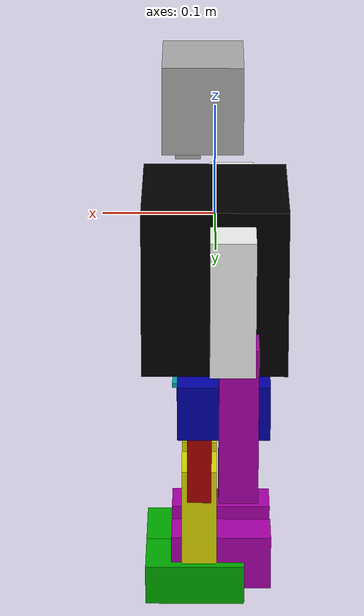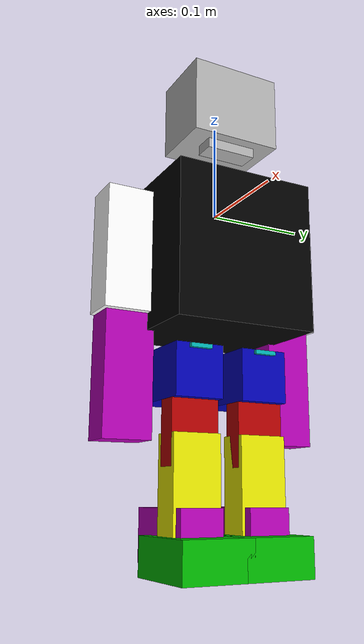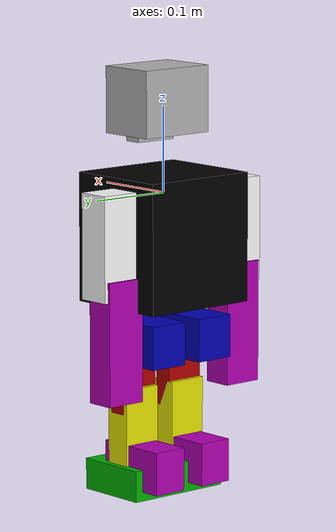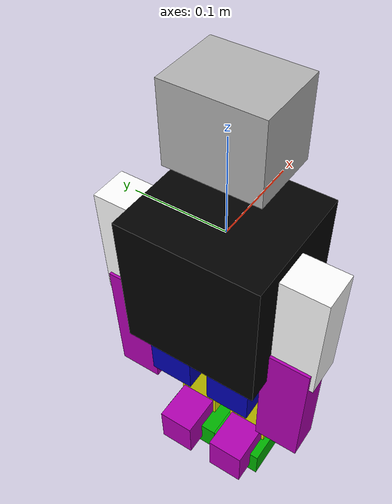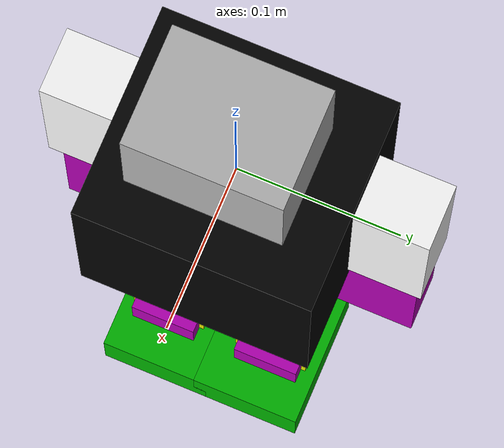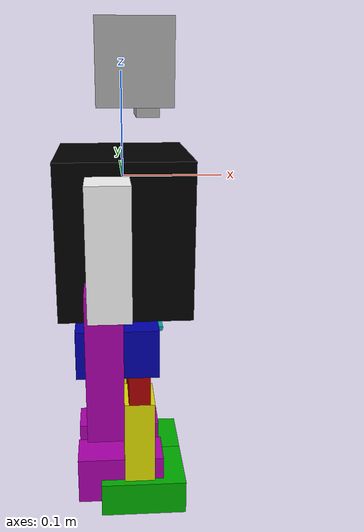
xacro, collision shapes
<?xml version="1.0" ?>

<robot name="soccerbot" xmlns:xacro="http://www.ros.org/wiki/xacro">
    <xacro:arg name="robot_name" default="/" />
    <xacro:arg name="model_type" default="dae" />
    <xacro:arg name="file_path" default="../bez1_description" />
    <xacro:arg name="has_base_footprint" default="false" />
    <xacro:arg name="tf_prefix" default="" />
    <xacro:property name="FILE_PATH" value="$(arg file_path)"/>
    <xacro:property name="MODEL_TYPE" value="$(arg model_type)"/>

    <xacro:include filename="$(find bez1_description)/urdf/parameters.xacro" />

    <xacro:include filename="$(find bez1_description)/urdf/arm.xacro" />
    <xacro:include filename="$(find bez1_description)/urdf/leg.xacro" />
    <xacro:include filename="$(find bez1_description)/urdf/head.xacro" />
    <xacro:include filename="$(find bez1_description)/urdf/front_camera.xacro" />
    <xacro:include filename="$(find bez1_description)/urdf/imu.xacro" />

    <link name="$(arg tf_prefix)/torso">
        <inertial>
            <mass value="1.529"/>
            <origin rpy="0 0 0" xyz="0.0082498 -0.0017440 -0.0522479"/>
            <inertia ixx="4.323e-3" ixy="5.549e-6" ixz="3.960e-5"
                     iyy="5.198e-3" iyz="-1.509e-5"
                     izz="3.567e-3"/>
        </inertial>
        <collision name="collision">
            <origin rpy="0 0 0" xyz="0 0 -0.052"/>
            <geometry>
                <box size="0.130 0.145 0.152"/>
            </geometry>
        </collision>
        <visual name="visual">
            <origin rpy="0 0 0" xyz="0 0 0"/>
            <geometry>
                <mesh filename="${FILE_PATH}/meshes/torso.${MODEL_TYPE}" scale="1 1 1"/>
            </geometry>
            <material name="black" />
        </visual>
    </link>

    <xacro:arm name="left" origin="$(arg tf_prefix)/torso" direction="1" />
    <xacro:arm name="right" origin="$(arg tf_prefix)/torso" direction="-1" />
    <xacro:leg name="left" origin="$(arg tf_prefix)/torso" direction="1" />
    <xacro:leg name="right" origin="$(arg tf_prefix)/torso" direction="-1" />
    <xacro:head origin="$(arg tf_prefix)/torso" />
    <xacro:imu origin="$(arg tf_prefix)/torso" />
    <xacro:front_camera origin="$(arg tf_prefix)/head" />

    <xacro:if value="$(arg has_base_footprint)">
        <link name="$(arg tf_prefix)/base_footprint" />
        <joint name="base_footprint_torso" type="fixed">
            <parent link="$(arg tf_prefix)/base_footprint"/>
            <child link="$(arg tf_prefix)/torso"/>
            <origin rpy="0 0 0" xyz="0 0 0.3536"/>
            <axis xyz="1 0 0"/>
        </joint>
        <gazebo reference="$(arg tf_prefix)/base_footprint">
            <kp>${JOINT_KP}</kp>
            <kd>${JOINT_KD}</kd>
            <mu1>${JOINT_MU1}</mu1>
            <mu2>${JOINT_MU2}</mu2>
        </gazebo>
    </xacro:if>

    <gazebo>
        <plugin name="gazebo_ros_control" filename="libgazebo_ros_control.so">
            <robotNamespace>$(arg robot_name)</robotNamespace>
            <robotSimType>gazebo_ros_control/DefaultRobotHWSim</robotSimType>
        </plugin>

        <plugin name="p3d_base_controller" filename="libgazebo_ros_p3d.so">
            <alwaysOn>true</alwaysOn>
            <updateRate>50.0</updateRate>
            <bodyName>base_footprint</bodyName>
            <topicName>odom_ground_truth</topicName>
            <gaussianNoise>0.01</gaussianNoise>
            <frameName>world</frameName>
            <xyzOffsets>0 0 0</xyzOffsets>
            <rpyOffsets>0 0 0</rpyOffsets>
        </plugin>
    </gazebo>

    <gazebo reference="$(arg tf_prefix)/torso">
        <kp>${JOINT_KP}</kp>
        <kd>${JOINT_KD}</kd>
        <mu1>${JOINT_MU1}</mu1>
        <mu2>${JOINT_MU2}</mu2>
    </gazebo>

</robot>

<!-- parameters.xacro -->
<robot name="bez1" xmlns:xacro="http://www.ros.org/wiki/xacro">

    <xacro:property name="PI" value="3.1415926535897931"/>

    <xacro:property name="JOINT_KP" value="1e15"/>
    <xacro:property name="JOINT_KD" value="1e13"/>
    <xacro:property name="JOINT_MU1" value="0.2"/>
    <xacro:property name="JOINT_MU2" value="0.2"/>
    <xacro:property name="FOREARM_MU1" value="0.2"/>
    <xacro:property name="FOREARM_MU2" value="0.2"/>

    <xacro:property name="JOINT_FRICTION" value="0.1"/>
    <xacro:property name="JOINT_DAMPING" value="0.01"/>

    <xacro:property name="MX28_TORQUE" value="2.5"/>
    <xacro:property name="MX28_VELOCITY" value="1"/>
    <xacro:property name="AX12_TORQUE" value="1.5"/>
    <xacro:property name="AX12_VELOCITY" value="1"/>

    <material name="white">
        <color rgba="1.0 1.0 1.0 1.0"/>
    </material>
    <material name="black">
        <color rgba="0.0 0.0 0.0 1.0"/>
    </material>
    <material name="silver">
        <color rgba="0.7 0.7 0.7 1.0"/>
    </material>
    <material name="yellow">
        <color rgba="0.9 0.9 0.0 1.0"/>
    </material>
    <material name="red">
        <color rgba="0.7 0.0 0.0 1.0"/>
    </material>
    <material name="green">
        <color rgba="0.0 0.7 0.0 1.0"/>
    </material>
    <material name="blue">
        <color rgba="0.0 0.0 0.7 1.0"/>
    </material>
    <material name="purple">
        <color rgba="0.7 0.0 0.7 1.0"/>
    </material>
    <material name="cyan">
        <color rgba="0.0 0.7 0.7 1.0"/>
    </material>
</robot>

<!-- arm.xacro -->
<robot name="bez1" xmlns:xacro="http://www.ros.org/wiki/xacro">
        <xacro:macro name="arm" params="name origin direction">
            <link name="$(arg tf_prefix)/${name}_bicep">
                <inertial>
                    <mass value="0.213e-3"/>
                    <origin rpy="0  0  0" xyz="0.000 ${direction * 0.02579} -0.04955"/>
                    <inertia ixx="2.824e-4" ixy="0.000" ixz="${direction * 0.000}"
                             iyy="2.744e-4" iyz="${direction * 1.165e-5}"
                             izz="2.433e-5" />
                </inertial>
                <collision name="collision">
                    <origin rpy="0  0  0" xyz="0 ${direction * 0.0225} -0.05001"/>
                    <geometry>
                        <box size="0.04 0.04776 0.123"/>
                    </geometry>
                </collision>
                <visual name="visual">
                    <origin rpy="0  0  0" xyz="0  0  0"/>
                    <geometry>
                        <mesh filename="${FILE_PATH}/meshes/${name}_bicep.${MODEL_TYPE}" scale="1 1 1"/>
                    </geometry>
                    <material name="white" />
                </visual>
            </link>
            <link name="$(arg tf_prefix)/${name}_forearm">
                <inertial>
                    <mass value="45.7e-3"/>
                    <origin rpy="0  0  0" xyz="0 ${direction * 0.0245} -0.0546097" />
                    <inertia ixx="0.113e-3" ixy="0.000" ixz="${direction * 0.001e-3}"
                             iyy="0.107e-3" iyz="${direction * 0.000}"
                             izz="0.012e-3" />
                </inertial>
                <collision name="collision">
                    <origin rpy="0  0  0" xyz="-0.0055 ${direction * 0.01750} -0.0600"/>
                    <geometry>
                        <box size="0.035 0.049 0.144"/>
                    </geometry>
                </collision>
                <visual name="visual">
                    <origin rpy="0  0  0" xyz="0  0  0"/>
                    <geometry>
                        <mesh filename="${FILE_PATH}/meshes/${name}_forearm.${MODEL_TYPE}" scale="1 1 1"/>
                    </geometry>
                    <material name="purple" />
                </visual>
            </link>

            <joint name="${name}_arm_motor_0" type="revolute">
                <parent link="${origin}"/>
                <child link="$(arg tf_prefix)/${name}_bicep"/>
                <origin rpy="0 0 0" xyz="-0.0157 ${direction * 0.0725} 0"/>
                <axis xyz="0 -1 0"/>
                <dynamics damping="${JOINT_DAMPING}" friction="${JOINT_FRICTION}" />
                <limit effort="${AX12_TORQUE}" lower="-${PI/2}" upper="${PI*5/4}" velocity="${AX12_VELOCITY}"/>
            </joint>
            <joint name="${name}_arm_motor_1" type="revolute">
                <parent link="$(arg tf_prefix)/${name}_bicep"/>
                <child link="$(arg tf_prefix)/${name}_forearm"/>
                <origin rpy="0 0 0" xyz="0 0 -0.10"/>
                <axis xyz="0 -1 0"/>
                <dynamics damping="${JOINT_DAMPING}" friction="${JOINT_FRICTION}" />
                <limit effort="${AX12_TORQUE}" lower="0" upper="${PI}" velocity="${AX12_VELOCITY}"/>
            </joint>

            <gazebo reference="$(arg tf_prefix)/${name}_forearm">
                <mu1>${FOREARM_MU1}</mu1>
                <mu2>${FOREARM_MU2}</mu2>
            </gazebo>

            <transmission name="${name}_arm_motor_0">
                <type>transmission_interface/SimpleTransmission</type>
                <joint name="${name}_arm_motor_0">
                    <hardwareInterface>hardware_interface/EffortJointInterface</hardwareInterface>
                </joint>
                <actuator name="${name}_arm_motor_0">
                    <hardwareInterface>hardware_interface/EffortJointInterface</hardwareInterface>
                    <mechanicalReduction>1</mechanicalReduction>
                </actuator>
            </transmission>
            <transmission name="${name}_arm_motor_1">
                <type>transmission_interface/SimpleTransmission</type>
                <joint name="${name}_arm_motor_1">
                    <hardwareInterface>hardware_interface/EffortJointInterface</hardwareInterface>
                </joint>
                <actuator name="${name}_arm_motor_1">
                    <hardwareInterface>hardware_interface/EffortJointInterface</hardwareInterface>
                    <mechanicalReduction>1</mechanicalReduction>
                </actuator>
            </transmission>

            <gazebo reference="$(arg tf_prefix)/${name}_bicep">
                <kp>${JOINT_KP}</kp>
                <kd>${JOINT_KD}</kd>
                <mu1>${JOINT_MU1}</mu1>
                <mu2>${JOINT_MU2}</mu2>
            </gazebo>
            <gazebo reference="$(arg tf_prefix)/${name}_forearm">
                <kp>${JOINT_KP}</kp>
                <kd>${JOINT_KD}</kd>
                <mu1>${JOINT_MU1}</mu1>
                <mu2>${JOINT_MU2}</mu2>
            </gazebo>
        </xacro:macro>
    </robot>

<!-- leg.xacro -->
<robot name="bez1" xmlns:xacro="http://www.ros.org/wiki/xacro">
    <xacro:macro name="leg" params="name origin direction">
        <link name="$(arg tf_prefix)/${name}_hip_side">
            <inertial>
                <mass value="9.364e-3"/>
                <origin rpy="0  0  0" xyz="0.0003695 0.0000 0.01689"/>
                <inertia ixx="0.002e-3" ixy="0.000" ixz="0.000"
                         iyy="0.005e-3" iyz="0.000"
                         izz="0.004e-3"/>
            </inertial>
            <collision name="collision">
                <origin rpy="0  0  0" xyz="0 0 0.00899"/>
                <geometry>
                    <box size="0.0485 0.022 0.0039"/>
                </geometry>
            </collision>
            <visual name="visual">
                <origin rpy="0  0  0" xyz="0  0  0"/>
                <geometry>
                    <mesh filename="${FILE_PATH}/meshes/${name}_hip_side.${MODEL_TYPE}" scale="1 1 1"/>
                </geometry>
                <material name="cyan" />
            </visual>
        </link>
        <link name="$(arg tf_prefix)/${name}_hip_front">
            <inertial>
                <mass value="153.186e-3"/>
                <origin rpy="0 0 0" xyz="-0.02093 0 -0.011313"/>
                <inertia ixx="0.041e-3" ixy="0.000" ixz="-0.002e-3"
                         iyy="0.118e-3" iyz="0.000"
                         izz="0.106e-3"/>
            </inertial>
            <collision name="collision">
                <origin rpy="0 0 0" xyz="-0.02187 0 -0.01332"/>
                <geometry>
                    <box size="0.083747 0.04885 0.0506"/>
                </geometry>
            </collision>
            <visual name="visual">
                <origin rpy="0  0  0" xyz="0  0  0"/>
                <geometry>
                    <mesh filename="${FILE_PATH}/meshes/${name}_hip_front.${MODEL_TYPE}" scale="1 1 1"/>
                </geometry>
                <material name="blue" />
            </visual>
        </link>
        <link name="$(arg tf_prefix)/${name}_thigh">
            <inertial>
                <mass value="21.438e-3"/>
                <origin rpy="0 0 0" xyz="0.0019422 ${direction * 0.0001419} -0.0469409"/>
                <inertia ixx="0.025e-3" ixy="${direction * 0.002e-3}" ixz="0.000"
                         iyy="0.016e-3" iyz="0.000"
                         izz="0.010e-3"/>
            </inertial>
            <collision name="collision">
                <origin rpy="0 0 0" xyz="0 0 -0.0445"/>
                <geometry>
                    <box size="0.022 0.048 0.111"/>
                </geometry>
            </collision>
            <visual name="visual">
                <origin rpy="0  0  0" xyz="0  0  0"/>
                <geometry>
                    <mesh filename="${FILE_PATH}/meshes/${name}_thigh.${MODEL_TYPE}" scale="1 1 1"/>
                </geometry>
                <material name="red" />
            </visual>
        </link>
        <link name="$(arg tf_prefix)/${name}_calve">
            <inertial>
                <mass value="86.547e-3"/>
                <origin rpy="0  0  0" xyz="0 ${direction * -0.0003259e-3} -0.0150123e-3"/>
                <inertia ixx="0.054e-3" ixy="0.000" ixz="0.000"
                         iyy="0.046e-3" iyz="-0.001e-3"
                         izz="0.019e-3"/>
            </inertial>
            <collision name="collision">
                <origin rpy="0 0 0" xyz="0 0 -0.03385"/>
                <geometry>
                    <box size="0.031883 0.048 0.105683"/>
                </geometry>
            </collision>
            <visual name="visual">
                <origin rpy="0 0 0" xyz="0 0 -0.0827"/>
                <geometry>
                    <mesh filename="${FILE_PATH}/meshes/${name}_calve.${MODEL_TYPE}" scale="1 1 1"/>
                </geometry>
                <material name="yellow" />
            </visual>
        </link>
        <link name="$(arg tf_prefix)/${name}_ankle">
            <inertial>
                <mass value="153.186e-3"/>
                <origin rpy="0 0 0" xyz="-0.020939e-3 0.000 0.011313e-3"/>
                <inertia ixx="0.041e-3" ixy="0.000" ixz="0.002e-3"
                         iyy="0.118e-3" iyz="0.000"
                         izz="0.106e-3"/>
            </inertial>
            <collision name="collision">
                <origin rpy="0 0 0" xyz="-0.02014 0 0.01031"/>
                <geometry>
                    <box size="0.090769 0.042 0.0506"/>
                </geometry>
            </collision>
            <visual name="visual">
                <origin rpy="0 0 0" xyz="0  0  0"/>
                <geometry>
                    <mesh filename="${FILE_PATH}/meshes/${name}_ankle.${MODEL_TYPE}" scale="1 1 1"/>
                </geometry>
                <material name="purple" />
            </visual>
        </link>
        <link name="$(arg tf_prefix)/${name}_foot">
            <inertial>
                <mass value="23.216e-3"/>
                <origin rpy="0 0 0" xyz="-0.020939 0.0 0.011313"/>
                <inertia ixx="0.006e-3" ixy="0.000" ixz="0.000"
                         iyy="0.018e-3" iyz="0.000"
                         izz="0.022e-3"/>
            </inertial>
            <collision name="collision">
                <origin rpy="0 0 0" xyz="0.00385 ${direction * -0.00401} -0.00737 "/>
                <geometry>
                    <box size="0.09 0.07 0.03674"/>
                </geometry>
                <contact_coefficients mu ="100.0" />
            </collision>
            <visual name="visual">
                <origin rpy="0  0  0" xyz="0  0  0"/>
                <geometry>
                    <mesh filename="${FILE_PATH}/meshes/${name}_foot.${MODEL_TYPE}" scale="1 1 1"/>
                </geometry>
                <material name="green" />
            </visual>
        </link>

        <joint name="${name}_hip_yaw" type="revolute">
            <parent link="$(arg tf_prefix)/torso"/>
            <child link="$(arg tf_prefix)/${name}_hip_side"/>
            <origin rpy="0 0 0" xyz="0.0135 ${direction * 0.035} -0.156"/>
            <axis xyz="0 0 ${direction * -1}"/>
            <dynamics damping="${JOINT_DAMPING}" friction="${JOINT_FRICTION}" />
            <limit effort="${MX28_TORQUE}" lower="-1.309" upper="0.524" velocity="${MX28_VELOCITY}"/>
        </joint>
        <joint name="${name}_hip_roll" type="revolute">
            <parent link="$(arg tf_prefix)/${name}_hip_side"/>
            <child link="$(arg tf_prefix)/${name}_hip_front"/>
            <origin rpy="0 0 0" xyz="0 0 0"/>
            <axis xyz="${direction} 0 0"/>
            <dynamics damping="${JOINT_DAMPING}" friction="${JOINT_FRICTION}" />
            <limit effort="${MX28_TORQUE}" lower="-${PI/4}" upper="${PI/2}" velocity="${MX28_VELOCITY}"/>
        </joint>
        <joint name="${name}_hip_pitch" type="revolute">
            <parent link="$(arg tf_prefix)/${name}_hip_front"/>
            <child link="$(arg tf_prefix)/${name}_thigh"/>
            <origin rpy="0 0 0" xyz="0 0 0"/>
            <axis xyz="0 -1 0"/>
            <dynamics damping="${JOINT_DAMPING}" friction="${JOINT_FRICTION}" />
            <limit effort="${MX28_TORQUE}" lower="-${PI/4}" upper="${PI*3/4}" velocity="${MX28_VELOCITY}"/>
        </joint>
        <joint name="${name}_knee" type="revolute">
            <parent link="$(arg tf_prefix)/${name}_thigh"/>
            <child link="$(arg tf_prefix)/${name}_calve"/>
            <origin rpy="0 0 0" xyz="0 0 -0.0890"/>
            <axis xyz="0 -1 0"/>
            <dynamics damping="${JOINT_DAMPING}" friction="${JOINT_FRICTION}" />
            <limit effort="${MX28_TORQUE}" lower="-2.793" upper="0" velocity="${MX28_VELOCITY}"/>
        </joint>
        <joint name="${name}_ankle_pitch" type="revolute">
            <parent link="$(arg tf_prefix)/${name}_calve"/>
            <child link="$(arg tf_prefix)/${name}_ankle"/>
            <origin rpy="0 0 0" xyz="0 0 -0.0827"/>
            <axis xyz="0 -1 0"/>
            <dynamics damping="${JOINT_DAMPING}" friction="${JOINT_FRICTION}" />
            <limit effort="${MX28_TORQUE}" lower="-${PI/4}" upper="${PI/2}" velocity="${MX28_VELOCITY}"/>
        </joint>
        <joint name="${name}_ankle_roll" type="revolute">
            <parent link="$(arg tf_prefix)/${name}_ankle"/>
            <child link="$(arg tf_prefix)/${name}_foot"/>
            <origin rpy="0 0 0" xyz="0 0 0"/>
            <axis xyz="${direction} 0 0"/>
            <dynamics damping="${JOINT_DAMPING}" friction="${JOINT_FRICTION}" />
            <limit effort="${MX28_TORQUE}" lower="-${PI/4}" upper="${PI/4}" velocity="${MX28_VELOCITY}"/>
        </joint>

        <transmission name="${name}_hip_yaw">
            <type>transmission_interface/SimpleTransmission</type>
            <joint name="${name}_hip_yaw">
                <hardwareInterface>hardware_interface/EffortJointInterface</hardwareInterface>
            </joint>
            <actuator name="${name}_hip_yaw">
                <hardwareInterface>hardware_interface/EffortJointInterface</hardwareInterface>
                <mechanicalReduction>1</mechanicalReduction>
            </actuator>
        </transmission>
        <transmission name="${name}_hip_roll">
            <type>transmission_interface/SimpleTransmission</type>
            <joint name="${name}_hip_roll">
                <hardwareInterface>hardware_interface/EffortJointInterface</hardwareInterface>
            </joint>
            <actuator name="${name}_hip_roll">
                <hardwareInterface>hardware_interface/EffortJointInterface</hardwareInterface>
                <mechanicalReduction>1</mechanicalReduction>
            </actuator>
        </transmission>
        <transmission name="${name}_hip_pitch">
            <type>transmission_interface/SimpleTransmission</type>
            <joint name="${name}_hip_pitch">
                <hardwareInterface>hardware_interface/EffortJointInterface</hardwareInterface>
            </joint>
            <actuator name="${name}_hip_pitch">
                <hardwareInterface>hardware_interface/EffortJointInterface</hardwareInterface>
                <mechanicalReduction>1</mechanicalReduction>
            </actuator>
        </transmission>
        <transmission name="${name}_knee">
            <type>transmission_interface/SimpleTransmission</type>
            <joint name="${name}_knee">
                <hardwareInterface>hardware_interface/EffortJointInterface</hardwareInterface>
            </joint>
            <actuator name="${name}_knee">
                <hardwareInterface>hardware_interface/EffortJointInterface</hardwareInterface>
                <mechanicalReduction>1</mechanicalReduction>
            </actuator>
        </transmission>
        <transmission name="${name}_ankle_pitch">
            <type>transmission_interface/SimpleTransmission</type>
            <joint name="${name}_ankle_pitch">
                <hardwareInterface>hardware_interface/EffortJointInterface</hardwareInterface>
            </joint>
            <actuator name="${name}_ankle_pitch">
                <hardwareInterface>hardware_interface/EffortJointInterface</hardwareInterface>
                <mechanicalReduction>1</mechanicalReduction>
            </actuator>
        </transmission>
        <transmission name="${name}_ankle_roll">
            <type>transmission_interface/SimpleTransmission</type>
            <joint name="${name}_ankle_roll">
                <hardwareInterface>hardware_interface/EffortJointInterface</hardwareInterface>
            </joint>
            <actuator name="${name}_ankle_roll">
                <hardwareInterface>hardware_interface/EffortJointInterface</hardwareInterface>
                <mechanicalReduction>1</mechanicalReduction>
            </actuator>
        </transmission>

        <gazebo reference="$(arg tf_prefix)/${name}_hip_side">
            <kp>${JOINT_KP}</kp>
            <kd>${JOINT_KD}</kd>
            <mu1>${JOINT_MU1}</mu1>
            <mu2>${JOINT_MU2}</mu2>
        </gazebo>
        <gazebo reference="$(arg tf_prefix)/${name}_hip_front">
            <kp>${JOINT_KP}</kp>
            <kd>${JOINT_KD}</kd>
            <mu1>${JOINT_MU1}</mu1>
            <mu2>${JOINT_MU2}</mu2>
        </gazebo>
        <gazebo reference="$(arg tf_prefix)/${name}_thigh">
            <kp>${JOINT_KP}</kp>
            <kd>${JOINT_KD}</kd>
            <mu1>${JOINT_MU1}</mu1>
            <mu2>${JOINT_MU2}</mu2>
        </gazebo>
        <gazebo reference="$(arg tf_prefix)/${name}_calve">
            <kp>${JOINT_KP}</kp>
            <kd>${JOINT_KD}</kd>
            <mu1>${JOINT_MU1}</mu1>
            <mu2>${JOINT_MU2}</mu2>
        </gazebo>
        <gazebo reference="$(arg tf_prefix)/${name}_ankle">
            <kp>${JOINT_KP}</kp>
            <kd>${JOINT_KD}</kd>
            <mu1>${JOINT_MU1}</mu1>
            <mu2>${JOINT_MU2}</mu2>
        </gazebo>
        <gazebo reference="$(arg tf_prefix)/${name}_foot">
            <mu1>${FOREARM_MU1}</mu1>
            <mu2>${FOREARM_MU2}</mu2>
        </gazebo>
    </xacro:macro>
</robot>

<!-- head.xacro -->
<robot name="soccerbot" xmlns:xacro="http://www.ros.org/wiki/xacro">
    <xacro:macro name="head" params="origin">
        <link name="$(arg tf_prefix)/neck">
            <inertial>
                <mass value="0.011294"/>
                <origin rpy="0  0  0" xyz="0 -0.0006476 0.0092453"/>
                <inertia ixx="5.489e-6" ixy="0" ixz="0"
                         iyy="1.433e-6" iyz="0"
                         izz="4.955e-6"/>
            </inertial>
            <collision name="collision">
                <origin rpy="0  0  0" xyz="0 0 0.0165"/>
                <geometry>
                    <box size="0.022 0.0523 0.033"/>
                </geometry>
            </collision>
            <visual name="visual">
                <origin rpy="0  0  0" xyz="0  0  0"/>
                <geometry>
                    <mesh filename="${FILE_PATH}/meshes/neck.${MODEL_TYPE}" scale="1 1 1"/>
                </geometry>
                <material name="silver" />
            </visual>
        </link>
        <link name="$(arg tf_prefix)/head">
            <inertial>
                <mass value="0.282"/>
                <origin rpy="0  0  0" xyz="0.0237166 0.0018096 0.0255966"/>
                <inertia ixx="2.06e-4" ixy="1.06e-6" ixz="-5.73e-5"
                         iyy="2.057e-4" iyz="2.534e-6"
                         izz="1.603e-4"/>
            </inertial>
            <collision name="collision">
                <origin rpy="0  0  0" xyz="-0.013 0 0.025"/>
                <geometry>
                    <box size="0.0712 0.094 0.0779"/>
                </geometry>
            </collision>
            <visual name="visual">
                <origin rpy="0  0  0" xyz="0  0  0"/>
                <geometry>
                    <mesh filename="${FILE_PATH}/meshes/head.${MODEL_TYPE}" scale="1 1 1"/>
                </geometry>
                <material name="silver" />
            </visual>
        </link>

        <joint name="head_motor_0" type="revolute">
            <parent link="${origin}"/>
            <child link="$(arg tf_prefix)/neck"/>
            <origin rpy="0 0 0" xyz="0.024 0 0.05875"/>
            <axis xyz="0 0 1"/>
            <dynamics damping="${JOINT_DAMPING}" friction="${JOINT_FRICTION}" />
            <limit effort="${AX12_TORQUE}" lower="-${PI/2}" upper="${PI/2}" velocity="${AX12_VELOCITY}"/>
        </joint>
        <joint name="head_motor_1" type="revolute">
            <parent link="$(arg tf_prefix)/neck"/>
            <child link="$(arg tf_prefix)/head"/>
            <origin rpy="0 0 0" xyz="0 0 0.024"/>
            <axis xyz="0 1 0"/>
            <dynamics damping="${JOINT_DAMPING}" friction="${JOINT_FRICTION}" />
            <limit effort="${AX12_TORQUE}" lower="-${PI*3/4}" upper="${PI*3/4}" velocity="${AX12_VELOCITY}"/>
        </joint>

        <transmission name="head_motor_0">
            <type>transmission_interface/SimpleTransmission</type>
            <joint name="head_motor_0">
                <hardwareInterface>hardware_interface/EffortJointInterface</hardwareInterface>
            </joint>
            <actuator name="head_motor_0">
                <hardwareInterface>hardware_interface/EffortJointInterface</hardwareInterface>
                <mechanicalReduction>1</mechanicalReduction>
            </actuator>
        </transmission>
        <transmission name="head_motor_1">
            <type>transmission_interface/SimpleTransmission</type>
            <joint name="head_motor_1">
                <hardwareInterface>hardware_interface/EffortJointInterface</hardwareInterface>
            </joint>
            <actuator name="head_motor_1">
                <hardwareInterface>hardware_interface/EffortJointInterface</hardwareInterface>
                <mechanicalReduction>1</mechanicalReduction>
            </actuator>
        </transmission>

        <gazebo reference="$(arg tf_prefix)/neck">
            <kp>${JOINT_KP}</kp>
            <kd>${JOINT_KD}</kd>
            <mu1>${JOINT_MU1}</mu1>
            <mu2>${JOINT_MU2}</mu2>
        </gazebo>
        <gazebo reference="$(arg tf_prefix)/head">
            <kp>${JOINT_KP}</kp>
            <kd>${JOINT_KD}</kd>
            <mu1>${JOINT_MU1}</mu1>
            <mu2>${JOINT_MU2}</mu2>
        </gazebo>
    </xacro:macro>
</robot>

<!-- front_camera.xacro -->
<robot name="soccerbot" xmlns:xacro="http://www.ros.org/wiki/xacro">

    <xacro:macro name="front_camera" params="origin">
        <link name="$(arg tf_prefix)/camera" >
            <inertial>
                <mass value="0.01"/>
                <origin rpy="0  0  0" xyz="0 0 0"/>
                <inertia ixx="1e-9" ixy="0" ixz="0"
                         iyy="1e-9" iyz="0"
                         izz="1e-9"/>
            </inertial>
        </link>
        <joint name="${origin}_camera" type="fixed">
            <parent link="$(arg tf_prefix)/head"/>
            <child link="$(arg tf_prefix)/camera"/>
            <origin rpy="0 0 0" xyz="0.015 0.00145 0.04740"/>
            <axis xyz="0  0  0"/>
            <dynamics damping="${JOINT_DAMPING}" friction="${JOINT_FRICTION}" />
            <limit effort="0" lower="0" upper="0" velocity="0"/>
        </joint>
        <gazebo reference="$(arg tf_prefix)/camera">
            <sensor type="camera" name="main_camera" >
                <always_on>1</always_on>
                <visualize>1</visualize>
                <update_rate>30</update_rate>
                <camera>
                    <horizontal_fov>1.39626</horizontal_fov>
                    <image>
                        <width>640</width>
                        <height>480</height>
                        <format>R8G8B8</format>
                    </image>
                    <clip>
                        <near>0.2</near>
                        <far>10</far>
                    </clip>
                    <noise>
                        <type>gaussian</type>
                        <mean>0</mean>
                        <stddev>0.007</stddev>
                    </noise>
                </camera>
                <plugin  filename='libgazebo_ros_camera.so' name='camera_controller'>
                    <alwaysOn>true</alwaysOn>
                    <updateRate>0.0</updateRate>
                    <cameraName>camera</cameraName>
                    <imageTopicName>image_raw</imageTopicName>
                    <cameraInfoTopicName>camera_info</cameraInfoTopicName>
                    <frameName>camera_link</frameName>
                    <hackBaseline>0.07</hackBaseline>
                    <distortionK1>0.0</distortionK1>
                    <distortionK2>0.0</distortionK2>
                    <distortionK3>0.0</distortionK3>
                    <distortionT1>0.0</distortionT1>
                    <distortionT2>0.0</distortionT2>
                </plugin>
            </sensor>
        </gazebo>

        <gazebo reference="$(arg tf_prefix)/camera">
            <kp>${JOINT_KP}</kp>
            <kd>${JOINT_KD}</kd>
            <mu1>${JOINT_MU1}</mu1>
            <mu2>${JOINT_MU2}</mu2>
        </gazebo>
    </xacro:macro>
</robot>

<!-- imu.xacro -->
<robot name="soccerbot" xmlns:xacro="http://www.ros.org/wiki/xacro">
    <xacro:macro name="imu" params="origin">
        <link name="$(arg tf_prefix)/imu_link" >
            <inertial>
                <mass value="0.01"/>
                <origin rpy="0  0  0" xyz="0 0 0"/>
                <inertia ixx="1e-9" ixy="0" ixz="0"
                         iyy="1e-9" iyz="0"
                         izz="1e-9"/>
            </inertial>
        </link>
        <joint name="${origin}_imu" type="fixed">
            <parent link="${origin}"/>
            <child link="$(arg tf_prefix)/imu_link"/>
            <origin rpy="0 0 0" xyz="0.0 0 0.000"/>
            <axis xyz="0 0 0"/>
        </joint>

        <gazebo reference="$(arg tf_prefix)/imu_link">
            <gravity>true</gravity>
            <sensor name="imu_sensor" type="imu">
                <always_on>true</always_on>
                <update_rate>100</update_rate>
                <visualize>true</visualize>
                <topic>__default_topic__</topic>
                <plugin filename="libgazebo_ros_imu_sensor.so" name="imu_plugin">
                    <topicName>imu_raw</topicName>
                    <bodyName>imu_link</bodyName>
                    <updateRateHZ>50.0</updateRateHZ>
                    <gaussianNoise>0.0</gaussianNoise>
                    <xyzOffset>0 0 0</xyzOffset>
                    <rpyOffset>0 0 0</rpyOffset>
                    <frameName>imu_link</frameName>
                </plugin>
                <pose>0 0 0 0 0 0</pose>
            </sensor>
        </gazebo>

        <gazebo reference="$(arg tf_prefix)/imu_link">
            <kp>${JOINT_KP}</kp>
            <kd>${JOINT_KD}</kd>
            <mu1>${JOINT_MU1}</mu1>
            <mu2>${JOINT_MU2}</mu2>
        </gazebo>
    </xacro:macro>
</robot>
